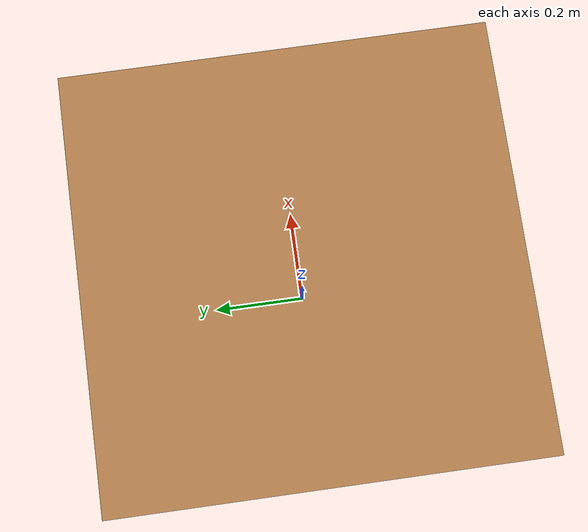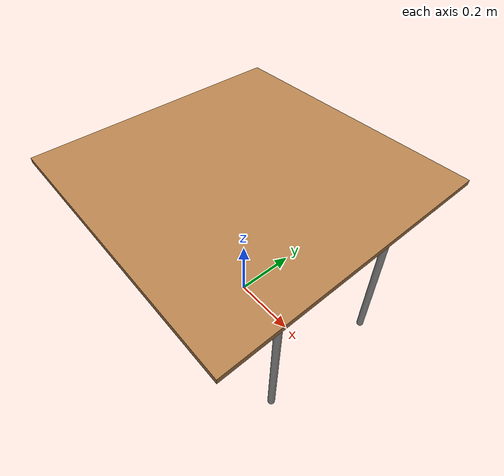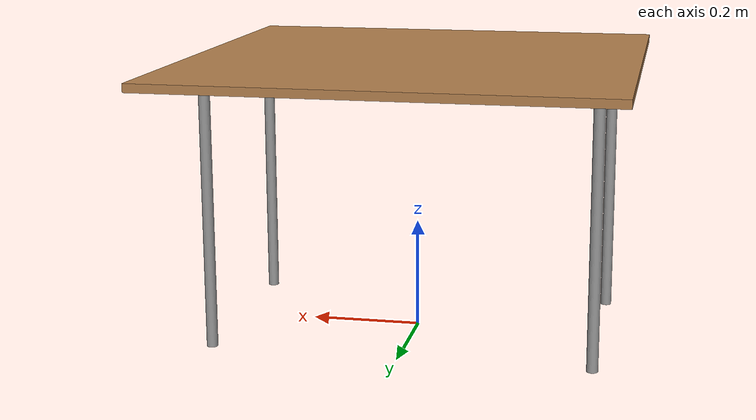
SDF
<?xml version="1.0" ?>
<sdf version="1.5">
  <model name="table">
    <static>true</static>
    <link name="link">
      <collision name="surface">
        <pose>0 0 0.5 0 0 0</pose>
        <geometry>
          <box>
            <size>0.8 0.8 0.015</size>
          </box>
        </geometry>
        <surface>
          <friction>
            <ode>
              <mu>0.6</mu>
              <mu2>0.6</mu2>
            </ode>
          </friction>
        </surface>
      </collision>
      <visual name="visual1">
        <pose>0 0 0.5 0 0 0</pose>
        <geometry>
          <box>
            <size>0.8 0.8 0.015</size>
          </box>
        </geometry>
        <material>
          <script>
            <uri>file://media/materials/scripts/gazebo.material</uri>
            <name>Gazebo/Wood</name>
          </script>
        </material>
      </visual>
      <collision name="front_left_leg">
        <pose>0.34 0.19 0.25 0 0 0</pose>
        <geometry>
          <cylinder>
            <radius>0.01</radius>
            <length>0.5</length>
          </cylinder>
        </geometry>
      </collision>
      <visual name="front_left_leg">
        <pose>0.34 0.19 0.25 0 0 0</pose>
        <geometry>
          <cylinder>
            <radius>0.01</radius>
            <length>0.5</length>
          </cylinder>
        </geometry>
        <material>
          <script>
            <uri>file://media/materials/scripts/gazebo.material</uri>
            <name>Gazebo/Grey</name>
          </script>
        </material>
      </visual>
      <collision name="front_right_leg">
        <pose>0.34 -0.19 0.25 0 0 0</pose>
        <geometry>
          <cylinder>
            <radius>0.01</radius>
            <length>0.5</length>
          </cylinder>
        </geometry>
      </collision>
      <visual name="front_right_leg">
        <pose>0.34 -0.19 0.25 0 0 0</pose>
        <geometry>
          <cylinder>
            <radius>0.01</radius>
            <length>0.5</length>
          </cylinder>
        </geometry>
        <material>
          <script>
            <uri>file://media/materials/scripts/gazebo.material</uri>
            <name>Gazebo/Grey</name>
          </script>
        </material>
      </visual>
      <collision name="back_right_leg">
        <pose>-0.34 -0.19 0.25 0 0 0</pose>
        <geometry>
          <cylinder>
            <radius>0.01</radius>
            <length>0.5</length>
          </cylinder>
        </geometry>
      </collision>
      <visual name="back_right_leg">
        <pose>-0.34 -0.19 0.25 0 0 0</pose>
        <geometry>
          <cylinder>
            <radius>0.01</radius>
            <length>0.5</length>
          </cylinder>
        </geometry>
        <material>
          <script>
            <uri>file://media/materials/scripts/gazebo.material</uri>
            <name>Gazebo/Grey</name>
          </script>
        </material>
      </visual>
      <collision name="back_left_leg">
        <pose>-0.34 0.19 0.25 0 0 0</pose>
        <geometry>
          <cylinder>
            <radius>0.01</radius>
            <length>0.5</length>
          </cylinder>
        </geometry>
      </collision>
      <visual name="back_left_leg">
        <pose>-0.34 0.19 0.25 0 0 0</pose>
        <geometry>
          <cylinder>
            <radius>0.01</radius>
            <length>0.5</length>
          </cylinder>
        </geometry>
        <material>
          <script>
            <uri>file://media/materials/scripts/gazebo.material</uri>
            <name>Gazebo/Grey</name>
          </script>
        </material>
      </visual>
    </link>
  </model>
</sdf>
